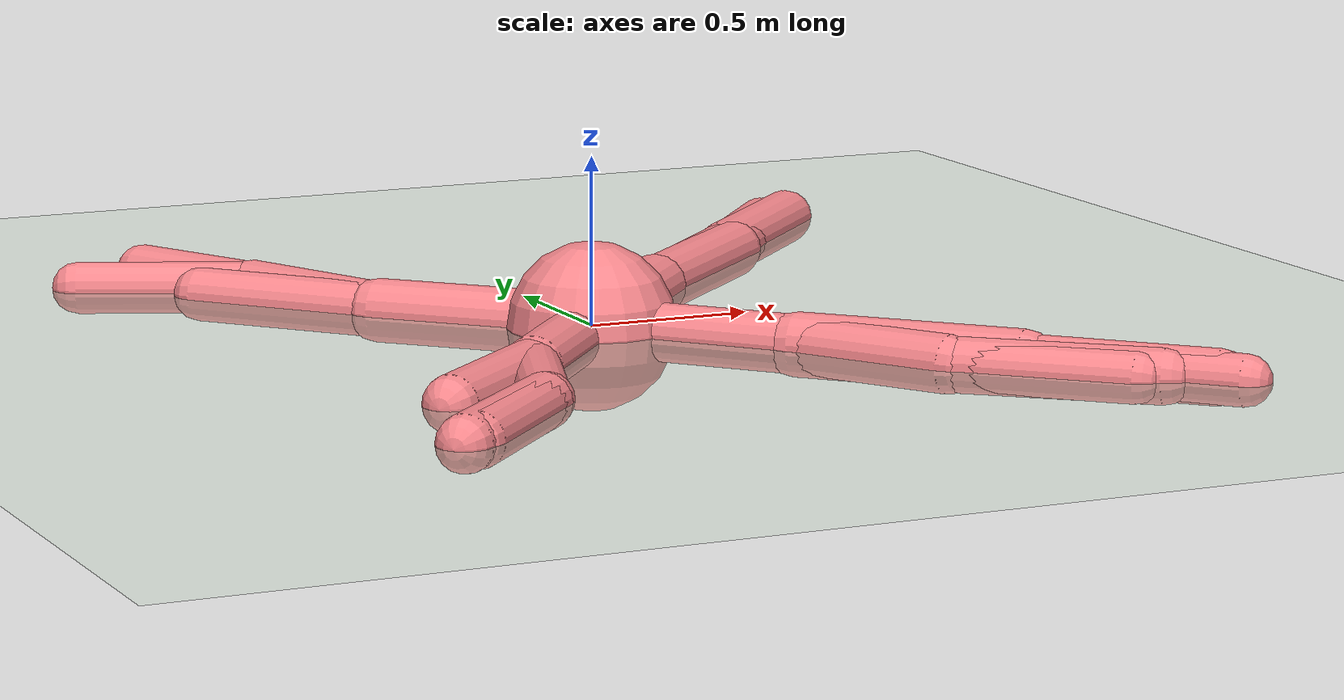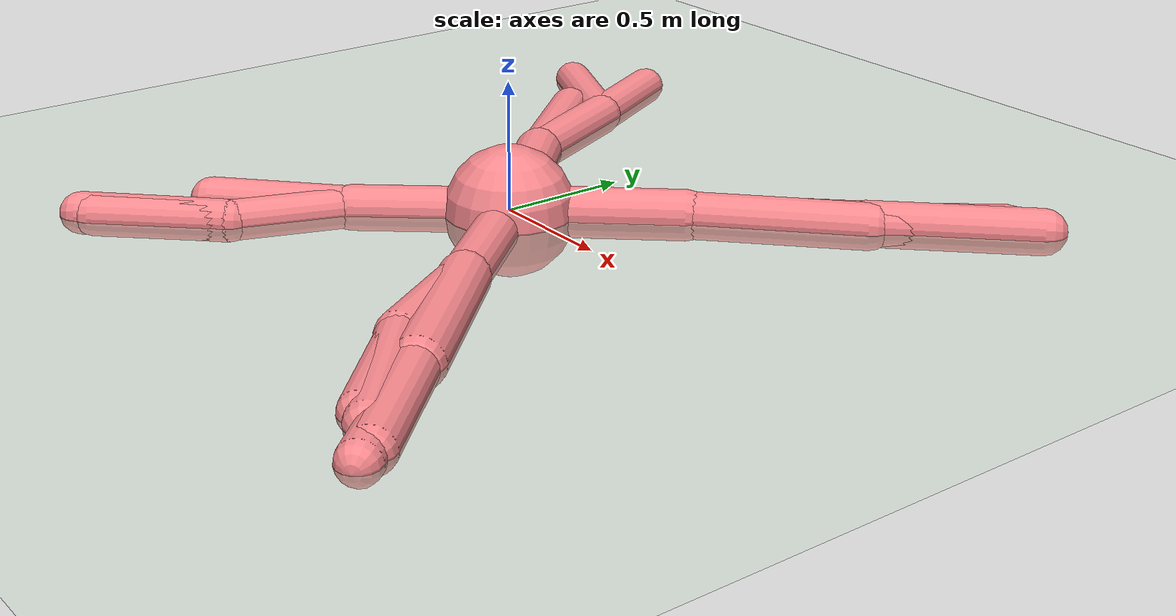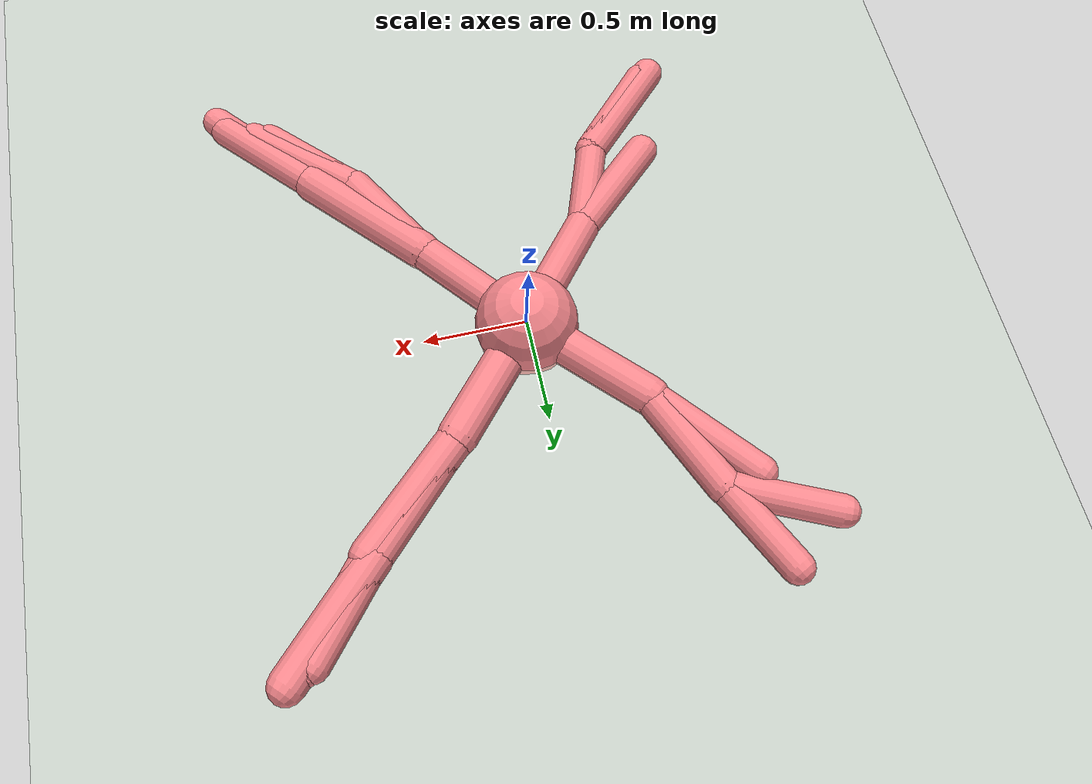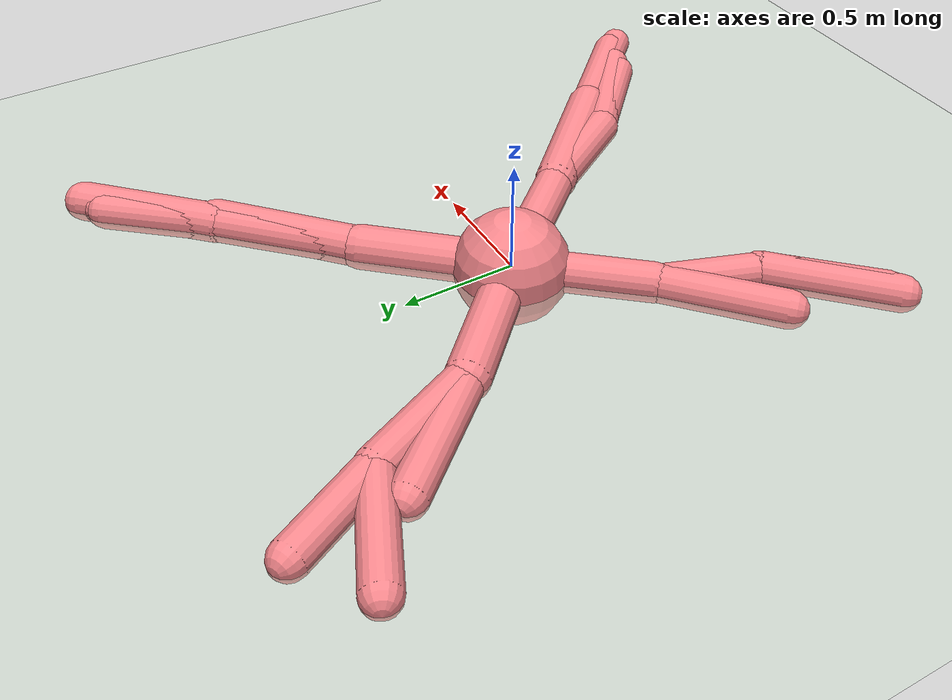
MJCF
<mujoco model="ant">
  <compiler angle="degree" coordinate="global" inertiafromgeom="true"/>
  <option integrator="RK4" timestep="0.01"/>
  <default>
    <joint armature="1" damping="1" limited="true"/>
    <geom conaffinity="0" condim="3" density="5.0" friction="1 0.5 0.5" margin="0.01" rgba=".98 .54 .56 1."/>
  </default>
  <visual>
    <headlight ambient=".1 .1 .1" diffuse=".6 .6 .6" specular="0.3 0.3 0.3"/>
    <map znear=".01"/>
    <quality shadowsize="16384"/>
  </visual>
  <worldbody>
    <light cutoff="100" diffuse="1 1 1" dir="-0 0 -1.3" directional="true" exponent="1" pos="0 0 1.3" specular=".1 .1 .1"/>
    <geom conaffinity="1" condim="3" name="floor" pos="0 0 0" rgba="0.8 0.9 0.8 1" size="200 200 .125" type="plane" material="grid_new"/>
    <body name="0" pos="0 0 0">
      <camera name="track" mode="trackcom" pos="0 -3 0.3" xyaxes="1 0 0 0 0 1"/>
      <geom pos="0 0 0" size="0.25" type="sphere"/>
      <joint armature="0" damping="0" limited="false" margin="0.01" name="0_joint" pos="0 0 0" type="free"/>
      <body name="1" pos="0 0 0">
        <joint axis="-0.707107 0.707107 0" name="1_joint" pos="0 0 0" range="-30 30" type="hinge"/>
        <geom fromto="-0.003051 -0.003498 0 0.432516 0.495877 0" size="0.097464" type="capsule"/>
        <body name="11" pos="0.432516 0.495877 0">
          <joint axis="-0.707107 0.707107 0" name="11_joint" pos="0.432516 0.495877 0" range="-30 30" type="hinge"/>
          <geom fromto="0.432106 0.495454 0 0.893506 0.970401 0" size="0.083743" type="capsule"/>
          <body name="111" pos="0.893506 0.970401 0">
            <joint axis="-0.707107 0.707107 0" name="111_joint" pos="0.893506 0.970401 0" range="-30 30" type="hinge"/>
            <geom fromto="0.891438 0.968277 0 1.339488 1.428496 0" size="0.087519" type="capsule"/>
          </body>
          <body name="211" pos="0.893506 0.970401 0">
            <joint axis="-0.707107 0.707107 0" name="211_joint" pos="0.893506 0.970401 0" range="-30 30" type="hinge"/>
            <geom fromto="0.893496 0.97039 0 1.222284 1.368042 0" size="0.080777" type="capsule"/>
          </body>
        </body>
        <body name="21" pos="0.432516 0.495877 0">
          <joint axis="-0.707107 0.707107 0" name="21_joint" pos="0.432516 0.495877 0" range="-30 30" type="hinge"/>
          <geom fromto="0.432394 0.495761 0 0.920898 0.959841 0" size="0.0893" type="capsule"/>
          <body name="121" pos="0.920898 0.959841 0">
            <joint axis="-0.707107 0.707107 0" name="121_joint" pos="0.920898 0.959841 0" range="-30 30" type="hinge"/>
            <geom fromto="0.919969 0.95869 0 1.263553 1.38457 0" size="0.074472" type="capsule"/>
          </body>
        </body>
      </body>
      <body name="2" pos="0 0 0">
        <joint axis="-0.707107 -0.707107 0" name="2_joint" pos="0 0 0" range="-30 30" type="hinge"/>
        <geom fromto="0.000127 -0.000129 0 -0.479349 0.483948 0" size="0.095056" type="capsule"/>
        <body name="12" pos="-0.479349 0.483948 0">
          <joint axis="-0.707107 -0.707107 0" name="12_joint" pos="-0.479349 0.483948 0" range="-30 30" type="hinge"/>
          <geom fromto="-0.47928 0.483793 0 -0.699177 0.978655 0" size="0.085138" type="capsule"/>
          <body name="112" pos="-0.699177 0.978655 0">
            <joint axis="-0.707107 -0.707107 0" name="112_joint" pos="-0.699177 0.978655 0" range="-30 30" type="hinge"/>
            <geom fromto="-0.694905 0.976743 0 -1.180896 1.194203 0" size="0.079009" type="capsule"/>
          </body>
          <body name="212" pos="-0.699177 0.978655 0">
            <joint axis="-0.707107 -0.707107 0" name="212_joint" pos="-0.699177 0.978655 0" range="-30 30" type="hinge"/>
            <geom fromto="-0.699126 0.978554 0 -0.905815 1.393201 0" size="0.079396" type="capsule"/>
          </body>
        </body>
        <body name="22" pos="-0.479349 0.483948 0">
          <joint axis="-0.707107 -0.707107 0" name="22_joint" pos="-0.479349 0.483948 0" range="-30 30" type="hinge"/>
          <geom fromto="-0.479341 0.483938 0 -0.875597 0.943497 0" size="0.080911" type="capsule"/>
        </body>
      </body>
      <body name="3" pos="0 0 0">
        <joint axis="0.707107 -0.707107 0" name="3_joint" pos="0 0 0" range="-30 30" type="hinge"/>
        <geom fromto="0.001035 0.001245 0 -0.383967 -0.461814 0" size="0.086928" type="capsule"/>
        <body name="13" pos="-0.383967 -0.461814 0">
          <joint axis="0.707107 -0.707107 0" name="13_joint" pos="-0.383967 -0.461814 0" range="-30 30" type="hinge"/>
          <geom fromto="-0.383947 -0.461758 0 -0.536726 -0.893821 0" size="0.076533" type="capsule"/>
          <body name="113" pos="-0.536726 -0.893821 0">
            <joint axis="0.707107 -0.707107 0" name="113_joint" pos="-0.536726 -0.893821 0" range="-30 30" type="hinge"/>
            <geom fromto="-0.530166 -0.886902 0 -0.891441 -1.267952 0" size="0.079136" type="capsule"/>
          </body>
          <body name="213" pos="-0.536726 -0.893821 0">
            <joint axis="0.707107 -0.707107 0" name="213_joint" pos="-0.536726 -0.893821 0" range="-30 30" type="hinge"/>
            <geom fromto="-0.536726 -0.893821 0 -0.937427 -1.295437 0" size="0.080314" type="capsule"/>
          </body>
        </body>
        <body name="23" pos="-0.383967 -0.461814 0">
          <joint axis="0.707107 -0.707107 0" name="23_joint" pos="-0.383967 -0.461814 0" range="-30 30" type="hinge"/>
          <geom fromto="-0.383954 -0.461802 0 -0.784378 -0.831662 0" size="0.082065" type="capsule"/>
        </body>
      </body>
      <body name="4" pos="0 0 0">
        <joint axis="0.707107 0.707107 0" name="4_joint" pos="0 0 0" range="-30 30" type="hinge"/>
        <geom fromto="-0.000181 0.00021 0 0.423666 -0.491605 0" size="0.087151" type="capsule"/>
        <body name="14" pos="0.423666 -0.491605 0">
          <joint axis="0.707107 0.707107 0" name="14_joint" pos="0.423666 -0.491605 0" range="-30 30" type="hinge"/>
          <geom fromto="0.423097 -0.49101 0 0.894155 -0.982652 0" size="0.094479" type="capsule"/>
          <body name="114" pos="0.894155 -0.982652 0">
            <joint axis="0.707107 0.707107 0" name="114_joint" pos="0.894155 -0.982652 0" range="-30 30" type="hinge"/>
            <geom fromto="0.893788 -0.982252 0 1.328757 -1.456646 0" size="0.074972" type="capsule"/>
          </body>
          <body name="214" pos="0.894155 -0.982652 0">
            <joint axis="0.707107 0.707107 0" name="214_joint" pos="0.894155 -0.982652 0" range="-30 30" type="hinge"/>
            <geom fromto="0.894145 -0.982641 0 1.287254 -1.391778 0" size="0.080978" type="capsule"/>
          </body>
        </body>
        <body name="24" pos="0.423666 -0.491605 0">
          <joint axis="0.707107 0.707107 0" name="24_joint" pos="0.423666 -0.491605 0" range="-30 30" type="hinge"/>
          <geom fromto="0.423552 -0.491418 0 0.688503 -0.922334 0" size="0.084861" type="capsule"/>
          <body name="124" pos="0.688503 -0.922334 0">
            <joint axis="0.707107 0.707107 0" name="124_joint" pos="0.688503 -0.922334 0" range="-30 30" type="hinge"/>
            <geom fromto="0.68848 -0.922315 0 1.152421 -1.317419 0" size="0.080174" type="capsule"/>
          </body>
          <body name="224" pos="0.688503 -0.922334 0">
            <joint axis="0.707107 0.707107 0" name="224_joint" pos="0.688503 -0.922334 0" range="-30 30" type="hinge"/>
            <geom fromto="0.6878 -0.92165 0 1.075691 -1.299149 0" size="0.074715" type="capsule"/>
          </body>
        </body>
      </body>
    </body>
  </worldbody>
  <actuator>
    <motor ctrllimited="true" ctrlrange="-1.0 1.0" joint="1_joint" gear="174.934757" name="1_joint"/>
    <motor ctrllimited="true" ctrlrange="-1.0 1.0" joint="2_joint" gear="65.973409" name="2_joint"/>
    <motor ctrllimited="true" ctrlrange="-1.0 1.0" joint="3_joint" gear="60.952298" name="3_joint"/>
    <motor ctrllimited="true" ctrlrange="-1.0 1.0" joint="4_joint" gear="159.976957" name="4_joint"/>
    <motor ctrllimited="true" ctrlrange="-1.0 1.0" joint="11_joint" gear="66.01129" name="11_joint"/>
    <motor ctrllimited="true" ctrlrange="-1.0 1.0" joint="12_joint" gear="58.575857" name="12_joint"/>
    <motor ctrllimited="true" ctrlrange="-1.0 1.0" joint="13_joint" gear="51.66185" name="13_joint"/>
    <motor ctrllimited="true" ctrlrange="-1.0 1.0" joint="14_joint" gear="76.065065" name="14_joint"/>
    <motor ctrllimited="true" ctrlrange="-1.0 1.0" joint="21_joint" gear="22.062761" name="21_joint"/>
    <motor ctrllimited="true" ctrlrange="-1.0 1.0" joint="22_joint" gear="184.387076" name="22_joint"/>
    <motor ctrllimited="true" ctrlrange="-1.0 1.0" joint="23_joint" gear="160.663107" name="23_joint"/>
    <motor ctrllimited="true" ctrlrange="-1.0 1.0" joint="24_joint" gear="65.669277" name="24_joint"/>
    <motor ctrllimited="true" ctrlrange="-1.0 1.0" joint="111_joint" gear="91.792302" name="111_joint"/>
    <motor ctrllimited="true" ctrlrange="-1.0 1.0" joint="112_joint" gear="86.861289" name="112_joint"/>
    <motor ctrllimited="true" ctrlrange="-1.0 1.0" joint="113_joint" gear="103.304062" name="113_joint"/>
    <motor ctrllimited="true" ctrlrange="-1.0 1.0" joint="114_joint" gear="121.030002" name="114_joint"/>
    <motor ctrllimited="true" ctrlrange="-1.0 1.0" joint="211_joint" gear="45.986025" name="211_joint"/>
    <motor ctrllimited="true" ctrlrange="-1.0 1.0" joint="213_joint" gear="152.654934" name="213_joint"/>
    <motor ctrllimited="true" ctrlrange="-1.0 1.0" joint="214_joint" gear="130.6867" name="214_joint"/>
    <motor ctrllimited="true" ctrlrange="-1.0 1.0" joint="121_joint" gear="88.994976" name="121_joint"/>
    <motor ctrllimited="true" ctrlrange="-1.0 1.0" joint="124_joint" gear="104.009362" name="124_joint"/>
    <motor ctrllimited="true" ctrlrange="-1.0 1.0" joint="224_joint" gear="109.282758" name="224_joint"/>
    <motor ctrllimited="true" ctrlrange="-1.0 1.0" joint="212_joint" gear="109.518196" name="212_joint"/>
  </actuator>
  <asset>
    <texture type="skybox" builtin="gradient" rgb1=".4 .5 .6" rgb2="0 0 0" width="100" height="100"/>
    <texture builtin="flat" height="1278" mark="cross" markrgb="1 1 1" name="texgeom" random="0.01" rgb1="0.8 0.6 0.4" rgb2="0.8 0.6 0.4" type="cube" width="127"/>
    <texture builtin="checker" height="100" name="texplane" rgb1="0 0 0" rgb2="0.8 0.8 0.8" type="2d" width="100"/>
    <material name="MatPlane" reflectance="0.5" shininess="1" specular="1" texrepeat="60 60" texture="texplane"/>
    <material name="geom" texture="texgeom" texuniform="true"/>
    <texture name="grid_new" type="2d" builtin="checker" rgb1=".1 .3 .2" rgb2=".2 .4 .3" width="1000" height="1000" mark="none" markrgb=".8 .6 .4"/>
    <material name="grid_new" texture="grid_new" texrepeat="0.2 0.2" texuniform="true" reflectance=".2"/>
  </asset>
</mujoco>
